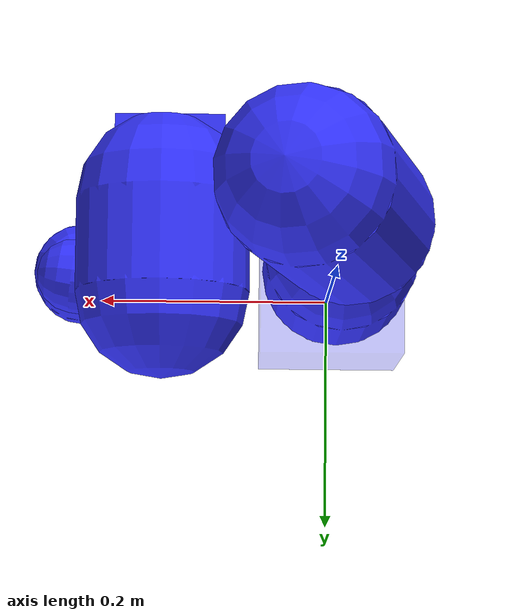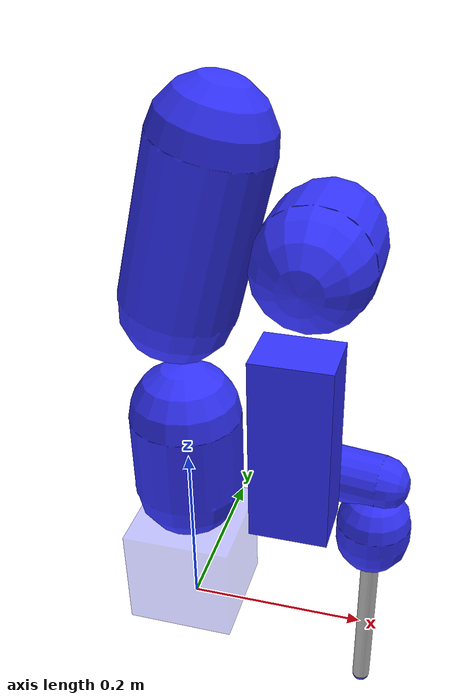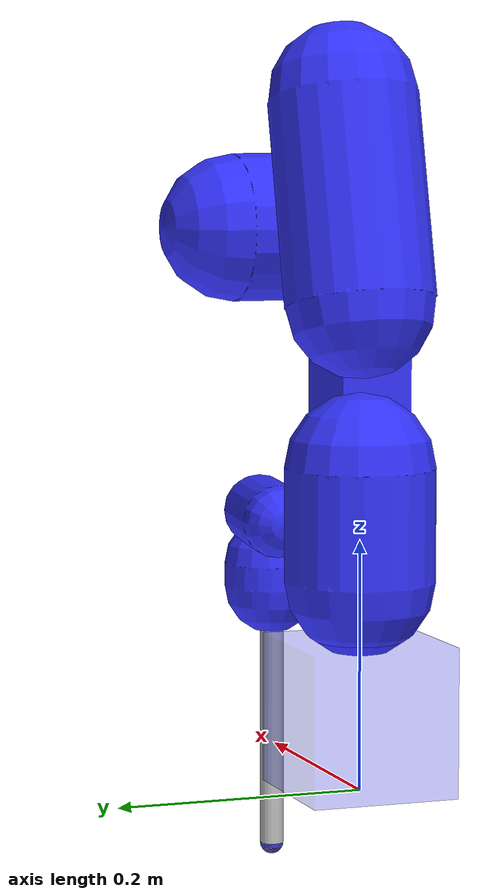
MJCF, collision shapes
<mujoco model="xarm6">
  <compiler angle="radian" autolimits="true" meshdir="assets"/>

  <option timestep="0.002" iterations="50" tolerance="1e-10" gravity="0.0 0.0 -9.81">
  </option>

  <asset>
    <material name="Black" rgba="0.0 0.0 0.0 1.0"/>
    <material name="gray" rgba="0.753 0.753 0.753 1"/>
    <material name="Red" rgba="0.85 0.19  0.21 1.0"/>
    <material name="Blue" rgba="0.28 0.52 0.92 1.0"/>
    <material name="Green" rgba="0.23 0.72 0.32 1.0"/>
    <material name="Yellow" rgba="0.95 0.76 0.05 1.0"/>
    <material name="White" rgba="1.0 1.0 1.0 1.0"/>
    <material name="Silver" rgba="0.753 0.753 0.753 1.0"/>

    <mesh file="base_link.STL"/>
    <mesh file="base.stl"/>
    <mesh file="link1.stl"/>
    <mesh file="link2.stl"/>
    <mesh file="link3.stl"/>
    <mesh file="link4.stl"/>
    <mesh file="link5.stl"/>
    <mesh file="link6.stl"/>
  </asset>

  <default>
    <default class="xarm6">
      <geom type="mesh" material="White"/>
      <joint axis="0 0 1" armature="0.1" range="-6.28319 6.28319" frictionloss="1"/>
      <general biastype="affine" ctrlrange="-6.28319 6.28319"/>
      <default class="size1">
        <joint damping="10"/>
        <general gainprm="1500" biasprm="0 -1500 -150" forcerange="-50 50"/>
      </default>
      <default class="size2">
        <joint damping="5"/>
        <general gainprm="1000" biasprm="0 -1000 -100" forcerange="-32 32"/>
      </default>
      <default class="size3">
        <joint damping="2"/>
        <general gainprm="800" biasprm="0 -800 -80" forcerange="-20 20"/>
      </default>
      <default class="visual">
        <geom type="mesh" contype="0" conaffinity="0" rgba="0.7 0.7 0.7 1" group="0"/>
      </default>
      <default class="collision">
        <geom contype="1" conaffinity="1" friction="1 0.005 0.0001" density="2000" group="3" rgba="0.2 0.2 1 0.3"/>
      </default>
    </default>
    <site size="0.001" rgba="1 0 0 1" group="4"/>
  </default>

  <worldbody>
    <body name="link_base" pos="0 0 0.0005584923398936209" quat="1 0 0 0">
      <geom class="visual" mesh="base"/>
      <geom class="collision" type="box" pos="0 0 0.06" size="0.06 0.06 0.06" contype="0" conaffinity="0"/>

      <body name="link1" pos="0 0 0.267">
        <inertial pos="-0.002 0.02692 -0.01332"
                  quat="0.983139 0.180751 -0.00455228 0.0272976"
                  mass="2.16"
                  diaginertia="0.00539487 0.00519906 0.00281397" />
        <joint name="joint1" class="size1"/>
        <geom class="visual" mesh="link1"/>
        <geom class="collision" type="capsule" fromto="0 0 -0.10  0 0 -0.01"  size="0.06"/>

        <body name="link2" quat="0.707105 -0.707108 0 0">
          <inertial pos="0.03531 -0.21398 0.03386"
                    quat="0.361402 0.186059 -0.606177 0.683608"
                    mass="1.71"
                    diaginertia="0.0274285 0.0243228 0.0031487" />
          <joint name="joint2" class="size1" range="-2.059 2.0944"/>
          <geom class="visual" mesh="link2"/>
          <geom class="collision" type="capsule" fromto="0.04 -0.28 0 0 -0.12 0" size="0.06"/>

          <body name="link3" pos="0.0535 -0.2845 0">
            <inertial pos="0.06781 0.10749 0.01457"
                      quat="0.263428 0.373979 -0.79161 0.405092"
                      mass="1.384"
                      diaginertia="0.0066317 0.00482342 0.00214488" />
            <joint name="joint3" class="size2" range="-3.927 0.19198"/>
            <geom class="visual" mesh="link3"/>
            <geom class="collision" type="capsule" fromto="0.08 0.11 0.06    0.08 0.11 -0.005" size="0.06"/>

            <body name="link4" pos="0.0775 0.3425 0" quat="0.707105 -0.707108 0 0">
              <inertial pos="-0.00021 0.02578 -0.02538"
                        quat="0.994019 0.0752563 -0.00686804 0.0788347"
                        mass="1.115"
                        diaginertia="0.00440091 0.00406855 0.00103407" />
              <joint name="joint4" class="size2"/>
              <geom class="visual" mesh="link4"/>
              <geom class="collision" type="box" pos="0 0.05 -0.07" size="0.04 0.03 0.1"/>

              <body name="link5" quat="0.707105 0.707108 0 0">
                <inertial pos="0.05428 0.01781 0.00543"
                          quat="-0.0766302 0.578118 -0.269638 0.766291"
                          mass="1.375"
                          diaginertia="0.00289757 0.0023276 0.000951789" />
                <joint name="joint5" class="size2" range="-1.69297 3.14159"/>
                <geom class="visual" mesh="link5"/>
                <geom class="collision" type="capsule" fromto="0 0.01 0.021 0.08 0.01 0.01" size="0.03"/>

                <body name="link6" pos="0.076 0.097 0" quat="0.707105 -0.707108 0 0">
                  <inertial pos="0 0.00064 -0.00952"
                            quat="0 0.707107 0 0.707107"
                            mass="0.1096"
                            diaginertia="7.9715e-05 4.8111e-05 4.5293e-05" />
                  <joint name="joint6" class="size3" range="-6.28318530718 6.28318530718"/>
                  <geom class="visual" mesh="link6"/>
                  <geom class="collision" type="capsule" fromto="0 0 -0.042 0 0 -0.022" size="0.04"/>

                    <!--  end-effecor  -->
                    <body name="stick_link" pos="0.0 0.0 0.1" quat="0 0 0 1">
                      <geom name="stick" type="capsule" size="0.01 0.1" pos="0 0 0" euler="0 0 0" material="gray" contype="1" conaffinity="1" group="0"/>
                      <site name="stick_tip_site" type="sphere" size="0.01" pos="0 0 0.1" rgba="0 0 1 0.6" group="0"/>
                    </body>
                </body>
              </body>
            </body>
          </body>
        </body>
      </body>
    </body>
  </worldbody>

  <!-- General Motor Actuators-->

  <!-- Position Motor Actuators-->
  <actuator>
    <position name="act1" joint="joint1" class="size1"  group="1" kp="350"/>
    <position name="act2" joint="joint2" class="size1" ctrlrange="-2.059 2.0944" group="1" kp="350"/>
    <position name="act3" joint="joint3" class="size2" ctrlrange="-3.927 0.19198" group="1" kp="350"/>
    <position name="act4" joint="joint4" class="size2" group="1" kp="350"/>
    <position name="act5" joint="joint5" class="size2" ctrlrange="-1.69297 3.14159" group="1" kp="350"/>
    <position name="act6" joint="joint6" class="size3" group="1" kp="350"/>
  </actuator>

  <!-- Velocity Motor Actuators-->

  <!-- Torque Motor Actuators-->
</mujoco>
